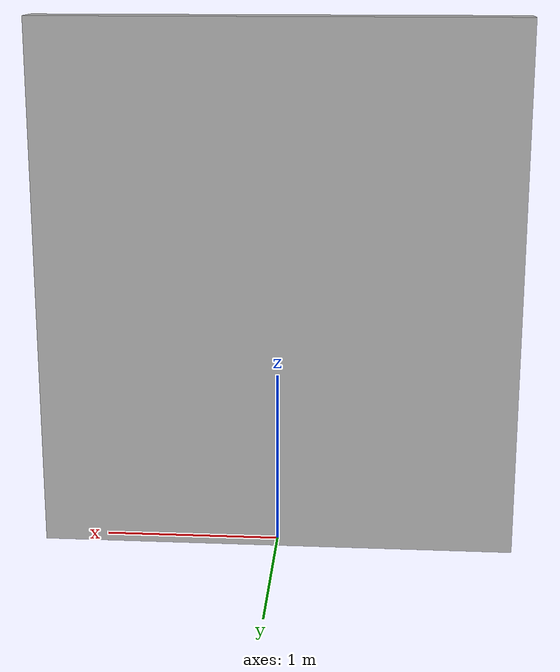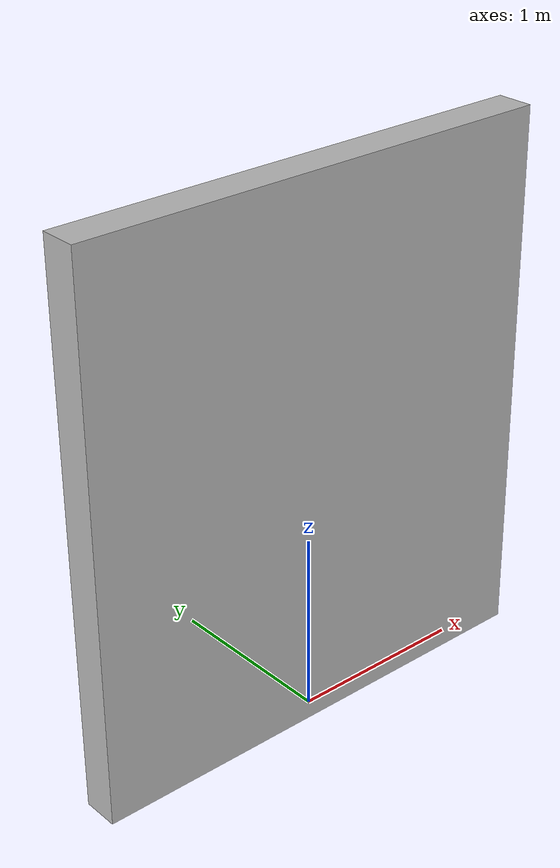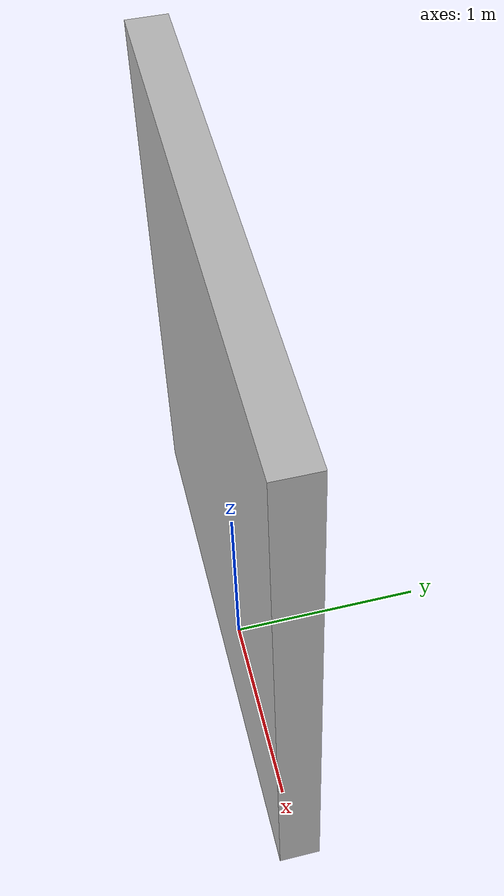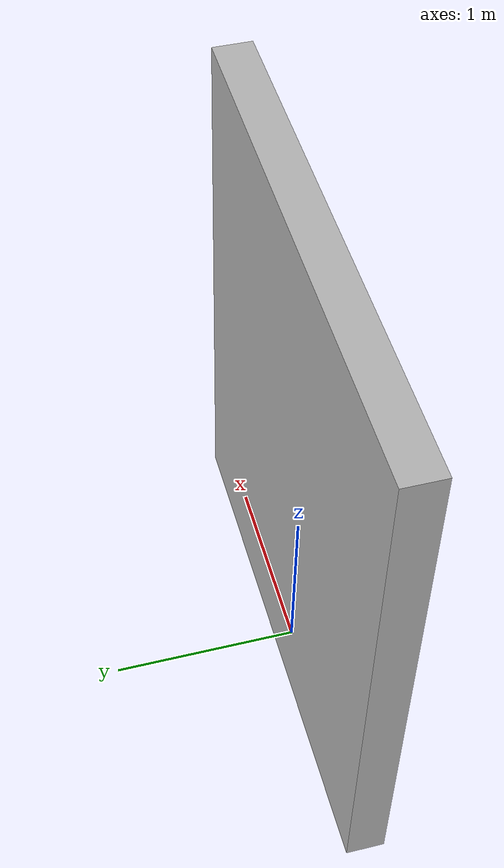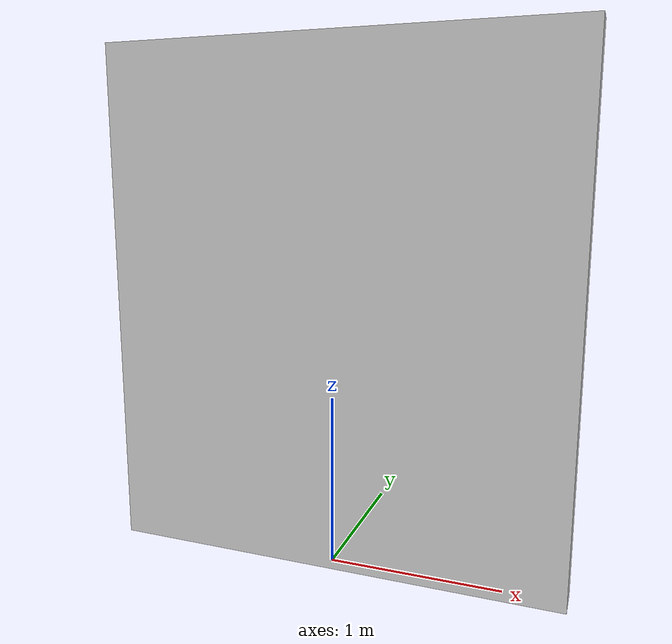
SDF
<?xml version="1.0" ?>
<sdf version="1.5">
  <model name="wall6">
    <static>true</static>
    <link name="chassis">
      <pose>0 0 1.5 0 0 0</pose>
      <collision name="collision">
        <geometry>
          <box>
            <size>2.7 0.2 3.0</size>
          </box>
        </geometry>
      </collision>
      <visual name="visual">
        <geometry>
          <mesh>
            <uri>model://wall6/meshes/simple_box.dae</uri>
            <scale>2.7 0.2 3.0</scale>
          </mesh>
        </geometry>
        <material>
          <script>
            <uri>model://wall6/materials/scripts</uri>
            <uri>model://wall6/materials/textures</uri>
            <name>wall6/Diffuse</name>
          </script>
        </material>
      </visual>
    </link>
  </model>
</sdf>
